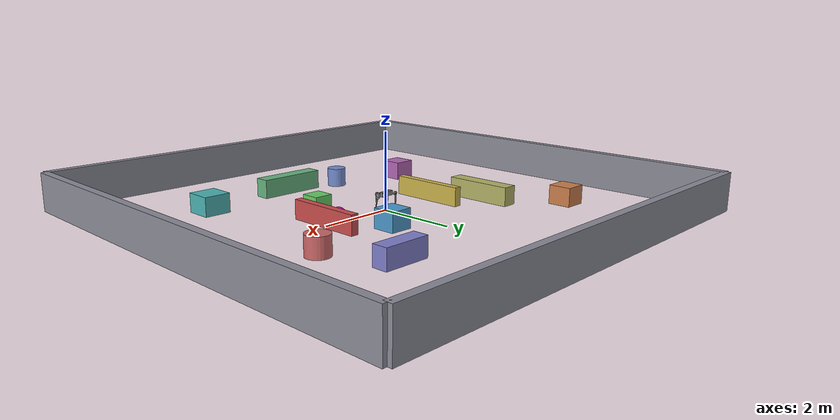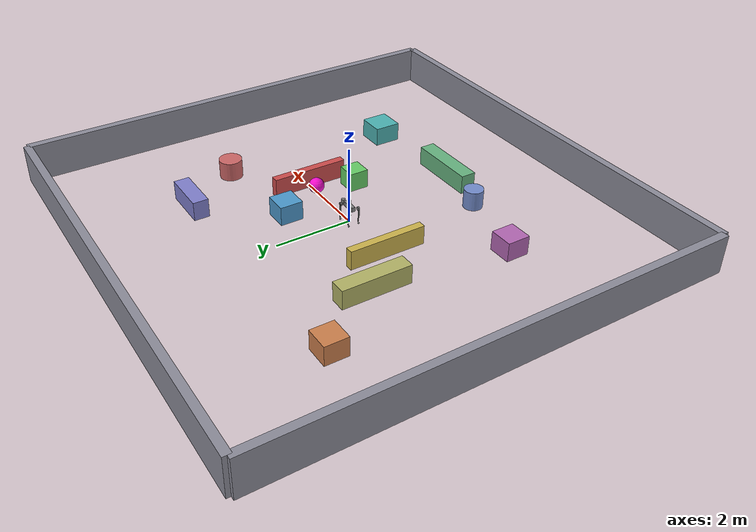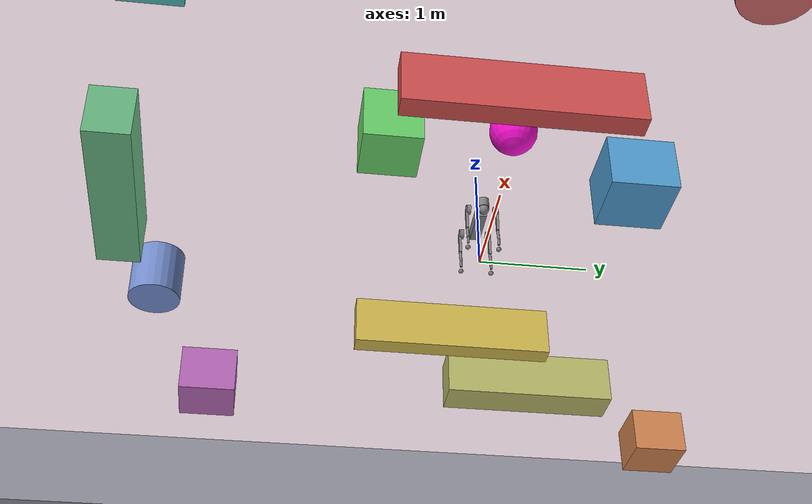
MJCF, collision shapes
<mujoco model="go2_imu_scene">
  <include file="scene.xml"/>

  <asset>
    <!-- Real soccer-ball texture (white + black pentagons) so MobileNet recognises it
         as a "sports ball" -- a procedural checker sphere was not detected at all. -->
    <texture name="ball_tex" type="2d" file="soccer.png"/>
    <material name="ball_mat" texture="ball_tex" texuniform="false"/>
  </asset>

  <sensor>
    <framequat     name="imu_quat" objtype="site" objname="imu"/>
    <gyro          name="imu_gyro" site="imu"/>
    <accelerometer name="imu_acc"  site="imu"/>
  </sensor>

  <worldbody>
    <geom name="wall_px" type="box" group="0" pos="6 0 0.5" size="0.1 6.0 0.5"
          rgba="0.55 0.55 0.6 1"/>
    <geom name="wall_nx" type="box" group="0" pos="-6 0 0.5" size="0.1 6.0 0.5"
          rgba="0.55 0.55 0.6 1"/>
    <geom name="wall_py" type="box" group="0" pos="0 6 0.5" size="6.0 0.1 0.5"
          rgba="0.55 0.55 0.6 1"/>
    <geom name="wall_ny" type="box" group="0" pos="0 -6 0.5" size="6.0 0.1 0.5"
          rgba="0.55 0.55 0.6 1"/>

    <!-- obstacles for camera/lidar + obstacle avoidance (group 0, ~0.5 m tall) -->
    <geom name="obs_front" type="box" group="0" pos="2.0 0 0.25" size="0.1 1.0 0.25"
          rgba="0.8 0.3 0.3 1"/>
    <geom name="obs_left"  type="box" group="0" pos="1.0 1.2 0.25" size="0.3 0.3 0.25"
          rgba="0.3 0.6 0.8 1"/>
    <geom name="obs_right" type="box" group="0" pos="1.4 -1.0 0.25" size="0.25 0.25 0.25"
          rgba="0.4 0.8 0.4 1"/>
    <geom name="obs_back"  type="box" group="0" pos="-1.6 0 0.25" size="0.1 1.0 0.25"
          rgba="0.8 0.7 0.3 1"/>

    <!-- extra obstacles scattered through the room (origin kept clear for spawn;
         navigable gaps left between them for Nav2 to plan around) -->
    <geom name="obs_c1" type="box"      group="0" pos="-3.0 -2.5 0.25" size="0.3 0.3 0.25"
          rgba="0.70 0.40 0.70 1"/>
    <geom name="obs_c2" type="box"      group="0" pos="3.2 -3.0 0.25"  size="0.35 0.35 0.25"
          rgba="0.30 0.70 0.70 1"/>
    <geom name="obs_c3" type="box"      group="0" pos="-3.8 2.8 0.25"  size="0.3 0.3 0.25"
          rgba="0.80 0.50 0.30 1"/>
    <geom name="obs_c4" type="box"      group="0" pos="2.6 3.0 0.25"   size="0.6 0.2 0.25"
          rgba="0.50 0.50 0.80 1"/>
    <geom name="obs_c5" type="box"      group="0" pos="-2.6 1.0 0.25"  size="0.2 0.9 0.25"
          rgba="0.70 0.70 0.40 1"/>
    <geom name="obs_c6" type="box"      group="0" pos="0.5 -3.3 0.25"  size="0.9 0.2 0.25"
          rgba="0.40 0.70 0.50 1"/>
    <geom name="obs_c7" type="cylinder" group="0" pos="3.5 1.5 0.25"   size="0.3 0.25"
          rgba="0.80 0.40 0.40 1"/>
    <geom name="obs_c8" type="cylinder" group="0" pos="-1.0 -3.0 0.25" size="0.25 0.25"
          rgba="0.45 0.55 0.80 1"/>

    <body name="sports_ball" pos="1.6 0 0.2">
      <freejoint name="ball_free"/>
      <!-- Solid vivid magenta (no obstacle/floor/wall uses this hue) so the color-blob
           tracker segments it reliably at ANY distance -- unlike the NN, which mis-labels
           the rendered ball. -->
      <geom name="sports_ball" type="sphere" group="0" size="0.2" mass="0.43"
            rgba="0.95 0.05 0.80 1" friction="1.0 0.01 0.005" condim="6"/>
    </body>
  </worldbody>
</mujoco>

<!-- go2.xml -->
<mujoco model="go2">
  <compiler angle="radian" meshdir="assets" autolimits="true"/>

  <option cone="elliptic" impratio="100"/>

  <default>
    <default class="go2">
      <geom friction="0.6" margin="0.001" condim="1"/>
      <joint axis="0 1 0" damping="2" armature="0.01" frictionloss="0.2"/>
      <motor ctrlrange="-23.7 23.7"/>
      <default class="abduction">
        <joint axis="1 0 0" range="-1.0472 1.0472"/>
      </default>
      <default class="hip">
        <default class="front_hip">
          <joint range="-1.5708 3.4907"/>
        </default>
        <default class="back_hip">
          <joint range="-0.5236 4.5379"/>
        </default>
      </default>
      <default class="knee">
        <joint range="-2.7227 -0.83776"/>
        <motor ctrlrange="-45.43 45.43"/>
      </default>
      <default class="visual">
        <geom type="mesh" contype="0" conaffinity="0" group="2"/>
      </default>
      <default class="collision">
        <geom group="3"/>
        <default class="foot">
          <geom size="0.022" pos="-0.002 0 -0.213" priority="1" solimp="0.015 1 0.022" condim="6"
            friction="0.8 0.02 0.01"/>
        </default>
      </default>
    </default>
  </default>

  <asset>
    <material name="metal" rgba=".9 .95 .95 1"/>
    <material name="black" rgba="0 0 0 1"/>
    <material name="white" rgba="1 1 1 1"/>
    <material name="gray" rgba="0.671705 0.692426 0.774270 1"/>

    <mesh file="base_0.obj"/>
    <mesh file="base_1.obj"/>
    <mesh file="base_2.obj"/>
    <mesh file="base_3.obj"/>
    <mesh file="base_4.obj"/>
    <mesh file="hip_0.obj"/>
    <mesh file="hip_1.obj"/>
    <mesh file="thigh_0.obj"/>
    <mesh file="thigh_1.obj"/>
    <mesh file="thigh_mirror_0.obj"/>
    <mesh file="thigh_mirror_1.obj"/>
    <mesh file="calf_0.obj"/>
    <mesh file="calf_1.obj"/>
    <mesh file="calf_mirror_0.obj"/>
    <mesh file="calf_mirror_1.obj"/>
    <mesh file="foot.obj"/>
  </asset>

  <worldbody>
    <body name="base" pos="0 0 0.445" childclass="go2">
      <inertial pos="0.021112 0 -0.005366" quat="-0.000543471 0.713435 -0.00173769 0.700719" mass="6.921"
        diaginertia="0.107027 0.0980771 0.0244531"/>
      <freejoint/>
      <geom mesh="base_0" material="black" class="visual"/>
      <geom mesh="base_1" material="black" class="visual"/>
      <geom mesh="base_2" material="black" class="visual"/>
      <geom mesh="base_3" material="white" class="visual"/>
      <geom mesh="base_4" material="gray" class="visual"/>
      <geom size="0.1881 0.04675 0.057" type="box" class="collision"/>
      <geom size="0.05 0.045" pos="0.285 0 0.01" type="cylinder" class="collision"/>
      <geom size="0.047" pos="0.293 0 -0.06" class="collision"/>
      <site name="imu" pos="-0.02557 0 0.04232"/>
      <!-- onboard sensors (added): front RGB camera + lidar mount site -->
      <camera name="front_camera" pos="0.32 0 0.03" xyaxes="0 -1 0 0.469 0 0.883" fovy="58"/>
      <site name="lidar" pos="0.05 0 0.12" size="0.01" rgba="1 0 0 0.3"/>
      <body name="FL_hip" pos="0.1934 0.0465 0">
        <inertial pos="-0.0054 0.00194 -0.000105" quat="0.497014 0.499245 0.505462 0.498237" mass="0.678"
          diaginertia="0.00088403 0.000596003 0.000479967"/>
        <joint name="FL_hip_joint" class="abduction"/>
        <geom mesh="hip_0" material="metal" class="visual"/>
        <geom mesh="hip_1" material="gray" class="visual"/>
        <geom size="0.046 0.02" pos="0 0.08 0" quat="1 1 0 0" type="cylinder" class="collision"/>
        <body name="FL_thigh" pos="0 0.0955 0">
          <inertial pos="-0.00374 -0.0223 -0.0327" quat="0.829533 0.0847635 -0.0200632 0.551623" mass="1.152"
            diaginertia="0.00594973 0.00584149 0.000878787"/>
          <joint name="FL_thigh_joint" class="front_hip"/>
          <geom mesh="thigh_0" material="metal" class="visual"/>
          <geom mesh="thigh_1" material="gray" class="visual"/>
          <geom size="0.1065 0.01225 0.017" pos="0 0 -0.1065" quat="0.707107 0 0.707107 0" type="box"
            class="collision"/>
          <body name="FL_calf" pos="0 0 -0.213">
            <inertial pos="0.00629595 -0.000622121 -0.141417" quat="0.710672 0.00154099 -0.00450087 0.703508"
              mass="0.241352" diaginertia="0.0014901 0.00146356 5.31397e-05"/>
            <joint name="FL_calf_joint" class="knee"/>
            <geom mesh="calf_0" material="gray" class="visual"/>
            <geom mesh="calf_1" material="black" class="visual"/>
            <geom size="0.012 0.06" pos="0.008 0 -0.06" quat="0.994493 0 -0.104807 0" type="cylinder"
              class="collision"/>
            <geom size="0.011 0.0325" pos="0.02 0 -0.148" quat="0.999688 0 0.0249974 0" type="cylinder"
              class="collision"/>
            <geom pos="0 0 -0.213" mesh="foot" class="visual" material="black"/>
            <geom name="FL" class="foot"/>
          </body>
        </body>
      </body>
      <body name="FR_hip" pos="0.1934 -0.0465 0">
        <inertial pos="-0.0054 -0.00194 -0.000105" quat="0.498237 0.505462 0.499245 0.497014" mass="0.678"
          diaginertia="0.00088403 0.000596003 0.000479967"/>
        <joint name="FR_hip_joint" class="abduction"/>
        <geom mesh="hip_0" material="metal" class="visual" quat="4.63268e-05 1 0 0"/>
        <geom mesh="hip_1" material="gray" class="visual" quat="4.63268e-05 1 0 0"/>
        <geom size="0.046 0.02" pos="0 -0.08 0" quat="0.707107 0.707107 0 0" type="cylinder" class="collision"/>
        <body name="FR_thigh" pos="0 -0.0955 0">
          <inertial pos="-0.00374 0.0223 -0.0327" quat="0.551623 -0.0200632 0.0847635 0.829533" mass="1.152"
            diaginertia="0.00594973 0.00584149 0.000878787"/>
          <joint name="FR_thigh_joint" class="front_hip"/>
          <geom mesh="thigh_mirror_0" material="metal" class="visual"/>
          <geom mesh="thigh_mirror_1" material="gray" class="visual"/>
          <geom size="0.1065 0.01225 0.017" pos="0 0 -0.1065" quat="0.707107 0 0.707107 0" type="box"
            class="collision"/>
          <body name="FR_calf" pos="0 0 -0.213">
            <inertial pos="0.00629595 0.000622121 -0.141417" quat="0.703508 -0.00450087 0.00154099 0.710672"
              mass="0.241352" diaginertia="0.0014901 0.00146356 5.31397e-05"/>
            <joint name="FR_calf_joint" class="knee"/>
            <geom mesh="calf_mirror_0" material="gray" class="visual"/>
            <geom mesh="calf_mirror_1" material="black" class="visual"/>
            <geom size="0.013 0.06" pos="0.01 0 -0.06" quat="0.995004 0 -0.0998334 0" type="cylinder"
              class="collision"/>
            <geom size="0.011 0.0325" pos="0.02 0 -0.148" quat="0.999688 0 0.0249974 0" type="cylinder"
              class="collision"/>
            <geom pos="0 0 -0.213" mesh="foot" class="visual" material="black"/>
            <geom name="FR" class="foot"/>
          </body>
        </body>
      </body>
      <body name="RL_hip" pos="-0.1934 0.0465 0">
        <inertial pos="0.0054 0.00194 -0.000105" quat="0.505462 0.498237 0.497014 0.499245" mass="0.678"
          diaginertia="0.00088403 0.000596003 0.000479967"/>
        <joint name="RL_hip_joint" class="abduction"/>
        <geom mesh="hip_0" material="metal" class="visual" quat="4.63268e-05 0 1 0"/>
        <geom mesh="hip_1" material="gray" class="visual" quat="4.63268e-05 0 1 0"/>
        <geom size="0.046 0.02" pos="0 0.08 0" quat="0.707107 0.707107 0 0" type="cylinder" class="collision"/>
        <body name="RL_thigh" pos="0 0.0955 0">
          <inertial pos="-0.00374 -0.0223 -0.0327" quat="0.829533 0.0847635 -0.0200632 0.551623" mass="1.152"
            diaginertia="0.00594973 0.00584149 0.000878787"/>
          <joint name="RL_thigh_joint" class="back_hip"/>
          <geom mesh="thigh_0" material="metal" class="visual"/>
          <geom mesh="thigh_1" material="gray" class="visual"/>
          <geom size="0.1065 0.01225 0.017" pos="0 0 -0.1065" quat="0.707107 0 0.707107 0" type="box"
            class="collision"/>
          <body name="RL_calf" pos="0 0 -0.213">
            <inertial pos="0.00629595 -0.000622121 -0.141417" quat="0.710672 0.00154099 -0.00450087 0.703508"
              mass="0.241352" diaginertia="0.0014901 0.00146356 5.31397e-05"/>
            <joint name="RL_calf_joint" class="knee"/>
            <geom mesh="calf_0" material="gray" class="visual"/>
            <geom mesh="calf_1" material="black" class="visual"/>
            <geom size="0.013 0.06" pos="0.01 0 -0.06" quat="0.995004 0 -0.0998334 0" type="cylinder"
              class="collision"/>
            <geom size="0.011 0.0325" pos="0.02 0 -0.148" quat="0.999688 0 0.0249974 0" type="cylinder"
              class="collision"/>
            <geom pos="0 0 -0.213" mesh="foot" class="visual" material="black"/>
            <geom name="RL" class="foot"/>
          </body>
        </body>
      </body>
      <body name="RR_hip" pos="-0.1934 -0.0465 0">
        <inertial pos="0.0054 -0.00194 -0.000105" quat="0.499245 0.497014 0.498237 0.505462" mass="0.678"
          diaginertia="0.00088403 0.000596003 0.000479967"/>
        <joint name="RR_hip_joint" class="abduction"/>
        <geom mesh="hip_0" material="metal" class="visual" quat="2.14617e-09 4.63268e-05 4.63268e-05 -1"/>
        <geom mesh="hip_1" material="gray" class="visual" quat="2.14617e-09 4.63268e-05 4.63268e-05 -1"/>
        <geom size="0.046 0.02" pos="0 -0.08 0" quat="0.707107 0.707107 0 0" type="cylinder" class="collision"/>
        <body name="RR_thigh" pos="0 -0.0955 0">
          <inertial pos="-0.00374 0.0223 -0.0327" quat="0.551623 -0.0200632 0.0847635 0.829533" mass="1.152"
            diaginertia="0.00594973 0.00584149 0.000878787"/>
          <joint name="RR_thigh_joint" class="back_hip"/>
          <geom mesh="thigh_mirror_0" material="metal" class="visual"/>
          <geom mesh="thigh_mirror_1" material="gray" class="visual"/>
          <geom size="0.1065 0.01225 0.017" pos="0 0 -0.1065" quat="0.707107 0 0.707107 0" type="box"
            class="collision"/>
          <body name="RR_calf" pos="0 0 -0.213">
            <inertial pos="0.00629595 0.000622121 -0.141417" quat="0.703508 -0.00450087 0.00154099 0.710672"
              mass="0.241352" diaginertia="0.0014901 0.00146356 5.31397e-05"/>
            <joint name="RR_calf_joint" class="knee"/>
            <geom mesh="calf_mirror_0" material="gray" class="visual"/>
            <geom mesh="calf_mirror_1" material="black" class="visual"/>
            <geom size="0.013 0.06" pos="0.01 0 -0.06" quat="0.995004 0 -0.0998334 0" type="cylinder"
              class="collision"/>
            <geom size="0.011 0.0325" pos="0.02 0 -0.148" quat="0.999688 0 0.0249974 0" type="cylinder"
              class="collision"/>
            <geom pos="0 0 -0.213" mesh="foot" class="visual" material="black"/>
            <geom name="RR" class="foot"/>
          </body>
        </body>
      </body>
    </body>
  </worldbody>

  <actuator>
    <motor class="abduction" name="FL_hip" joint="FL_hip_joint"/>
    <motor class="hip" name="FL_thigh" joint="FL_thigh_joint"/>
    <motor class="knee" name="FL_calf" joint="FL_calf_joint"/>
    <motor class="abduction" name="FR_hip" joint="FR_hip_joint"/>
    <motor class="hip" name="FR_thigh" joint="FR_thigh_joint"/>
    <motor class="knee" name="FR_calf" joint="FR_calf_joint"/>
    <motor class="abduction" name="RL_hip" joint="RL_hip_joint"/>
    <motor class="hip" name="RL_thigh" joint="RL_thigh_joint"/>
    <motor class="knee" name="RL_calf" joint="RL_calf_joint"/>
    <motor class="abduction" name="RR_hip" joint="RR_hip_joint"/>
    <motor class="hip" name="RR_thigh" joint="RR_thigh_joint"/>
    <motor class="knee" name="RR_calf" joint="RR_calf_joint"/>
  </actuator>

  <keyframe>
    <key name="home" qpos="0 0 0.27 1 0 0 0 0 0.9 -1.8 0 0.9 -1.8 0 0.9 -1.8 0 0.9 -1.8"
      ctrl="0 0.9 -1.8 0 0.9 -1.8 0 0.9 -1.8 0 0.9 -1.8"/>
  </keyframe>
</mujoco>

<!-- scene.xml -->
<mujoco model="go2 scene">
  <include file="go2.xml" />

  <statistic center="0 0 0.1" extent="0.8" />

  <visual>
     <headlight ambient="0.5 0.5 0.5" diffuse="0.5 0.5 0.5" specular="0.02 0.02 0.02" />

  </visual>

  <asset>
   <texture builtin="gradient" height="3072" rgb1="1.0 1.0 1.0" rgb2="1.0 1.0 1.0" type="skybox" width="512" />

  </asset>

  <worldbody>

  </worldbody>
</mujoco>
